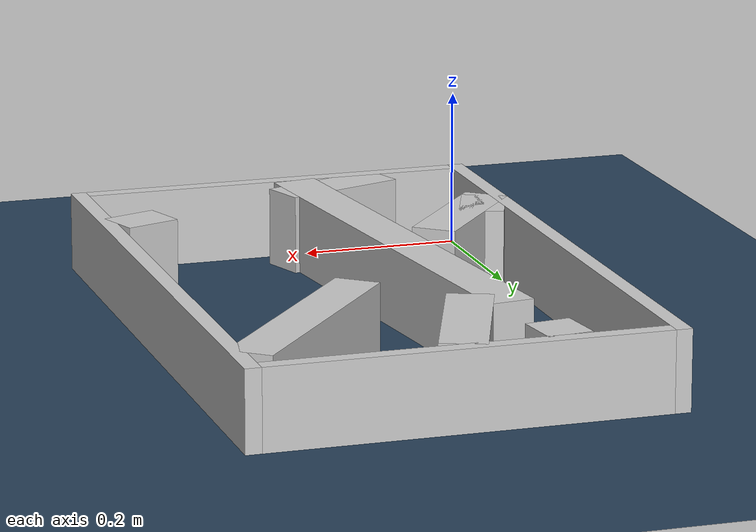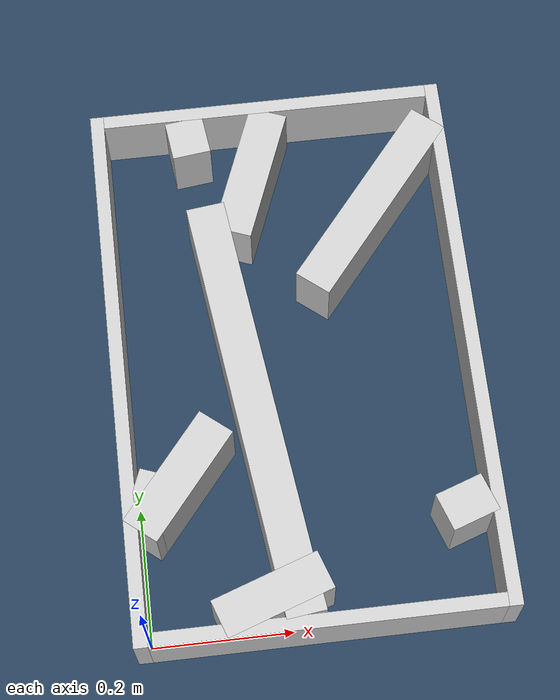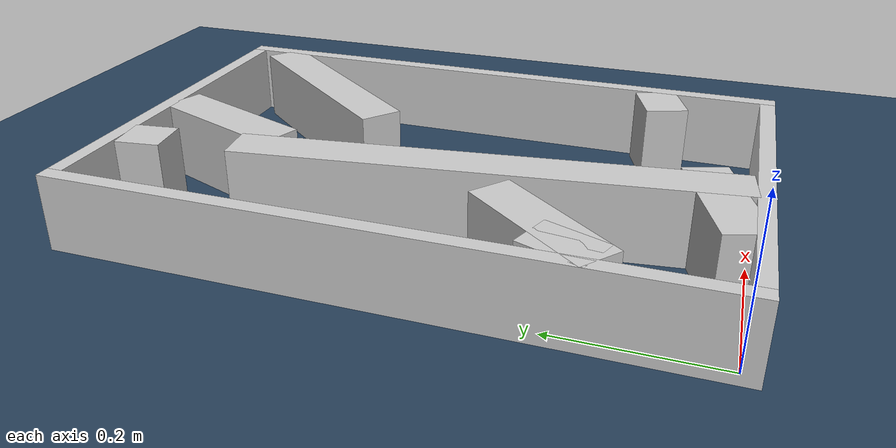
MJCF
<?xml version="1.0" ?>
<mujoco model="generated_real_template">
  <compiler angle="degree"/>
  <option timestep="0.002" integrator="implicitfast" iterations="100" cone="elliptic"/>
  <default>
    <geom density="1"/>
  </default>
  <asset>
    <texture builtin="gradient" height="3072" rgb1="0.3 0.5 0.7" rgb2="0 0 0" type="skybox" width="512"/>
    <texture builtin="checker" height="300" mark="edge" markrgb="0.8 0.8 0.8" name="groundplane" rgb1="0.2 0.3 0.4" rgb2="0.1 0.2 0.3" type="2d" width="300"/>
    <material name="groundplane" reflectance="0.2" texrepeat="5 5" texture="groundplane" texuniform="true"/>
  </asset>
  <worldbody>
    <light dir="0 0 -1" directional="true" pos="0 0 1.5"/>
    <geom name="floor" type="plane" condim="4" friction="0.5 0.005 0.001" material="groundplane" size="0 0 0.05"/>
    <body name="walls">
      <geom name="wall_boundary_left" type="box" condim="4" friction="1.0 0.005 0.0001" rgba="0.8 0.8 0.8 1" pos="-0.010000 0.387500 0.050000" euler="0 0 0.000000" size="0.010000 0.407500 0.050000"/>
      <geom name="wall_boundary_right" type="box" condim="4" friction="1.0 0.005 0.0001" rgba="0.8 0.8 0.8 1" pos="0.500000 0.387500 0.050000" euler="0 0 0.000000" size="0.010000 0.407500 0.050000"/>
      <geom name="wall_boundary_bottom" type="box" condim="4" friction="1.0 0.005 0.0001" rgba="0.8 0.8 0.8 1" pos="0.245000 -0.010000 0.050000" euler="0 0 0.000000" size="0.245000 0.010000 0.050000"/>
      <geom name="wall_boundary_top" type="box" condim="4" friction="1.0 0.005 0.0001" rgba="0.8 0.8 0.8 1" pos="0.245000 0.785000 0.050000" euler="0 0 0.000000" size="0.245000 0.010000 0.050000"/>
      <geom name="wall_inner_1_1" type="box" condim="4" friction="1.0 0.005 0.0001" rgba="0.8 0.8 0.8 1" pos="0.385028 0.611324 0.050000" euler="0 0 -129.205201" size="0.162769 0.028500 0.050000"/>
      <geom name="wall_inner_1_2" type="box" condim="4" friction="1.0 0.005 0.0001" rgba="0.8 0.8 0.8 1" pos="0.062161 0.215523 0.050000" euler="0 0 -129.205201" size="0.095041 0.028500 0.050000"/>
      <geom name="wall_inner_2_1" type="box" condim="4" friction="1.0 0.005 0.0001" rgba="0.8 0.8 0.8 1" pos="0.123645 0.745293 0.050000" euler="0 0 -82.854972" size="0.029940 0.028500 0.050000"/>
      <geom name="wall_inner_2_2" type="box" condim="4" friction="1.0 0.005 0.0001" rgba="0.8 0.8 0.8 1" pos="0.177746 0.313708 0.050000" euler="0 0 -82.854972" size="0.316163 0.028500 0.050000"/>
      <geom name="wall_inner_3_1" type="box" condim="4" friction="1.0 0.005 0.0001" rgba="0.8 0.8 0.8 1" pos="0.021396 0.183466 0.050000" euler="0 0 68.964903" size="0.041216 0.028500 0.050000"/>
      <geom name="wall_inner_3_2" type="box" condim="4" friction="1.0 0.005 0.0001" rgba="0.8 0.8 0.8 1" pos="0.211606 0.678075 0.050000" euler="0 0 68.964903" size="0.103845 0.028500 0.050000"/>
      <geom name="wall_inner_4_1" type="box" condim="4" friction="1.0 0.005 0.0001" rgba="0.8 0.8 0.8 1" pos="0.174459 0.033459 0.050000" euler="0 0 19.234808" size="0.080589 0.028500 0.050000"/>
      <geom name="wall_inner_4_2" type="box" condim="4" friction="1.0 0.005 0.0001" rgba="0.8 0.8 0.8 1" pos="0.456166 0.131752 0.050000" euler="0 0 19.234808" size="0.035834 0.028500 0.050000"/>
    </body>
  </worldbody>
</mujoco>
